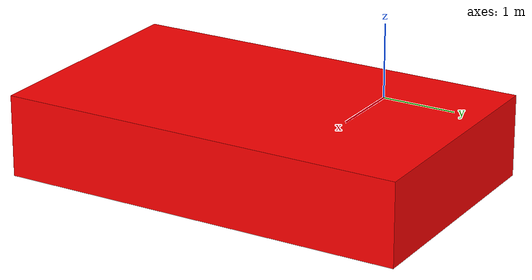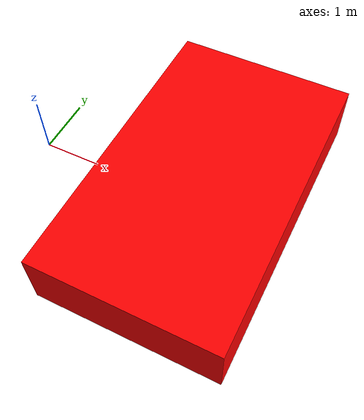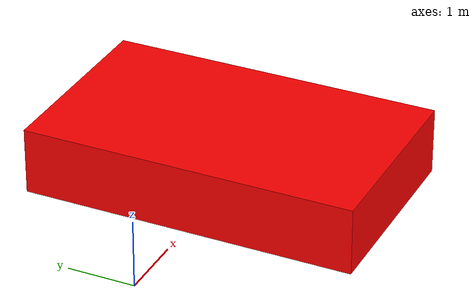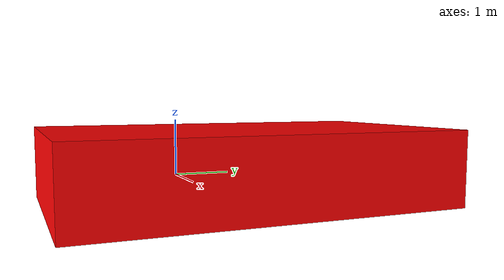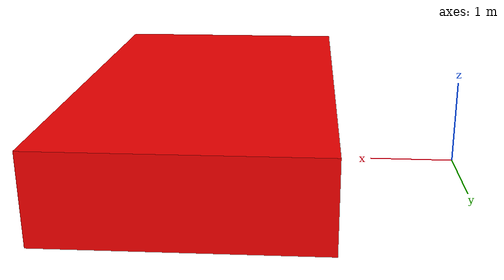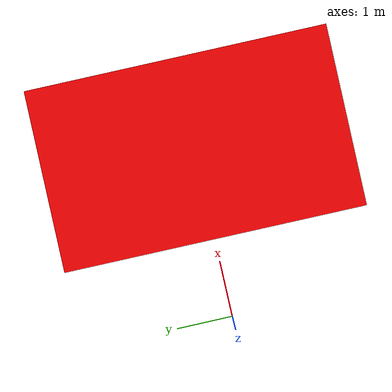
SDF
<sdf version='1.9'>
  <model name='box'>
    <link name='base'>
      <inertial>
        <pose>6 0 1 0 0 0</pose>
        <mass>1</mass>
        <inertia>
          <ixx>0</ixx>
          <ixy>0</ixy>
          <ixz>0</ixz>
          <iyy>0</iyy>
          <iyz>0</iyz>
          <izz>0</izz>
        </inertia>
      </inertial>
      <collision name='base_fixed_joint_lump__box_link_collision'>
        <pose>3 0 0.5 0 0 0</pose>
        <geometry>
          <box>
            <size>3 5 1</size>
          </box>
        </geometry>
      </collision>
      <visual name='base_fixed_joint_lump__box_link_visual'>
        <pose>3 0 0.5 0 0 0</pose>
        <geometry>
          <box>
            <size>3 5 1</size>
          </box>
        </geometry>
        <material>
          <diffuse>1 0 0 1</diffuse>
          <ambient>1 0 0 1</ambient>
        </material>
      </visual>
    </link>
    <frame name='box' attached_to='base'>
      <pose>3 0 0.5 0 -0 0</pose>
    </frame>
    <frame name='box_link' attached_to='box'/>
  </model>
</sdf>
